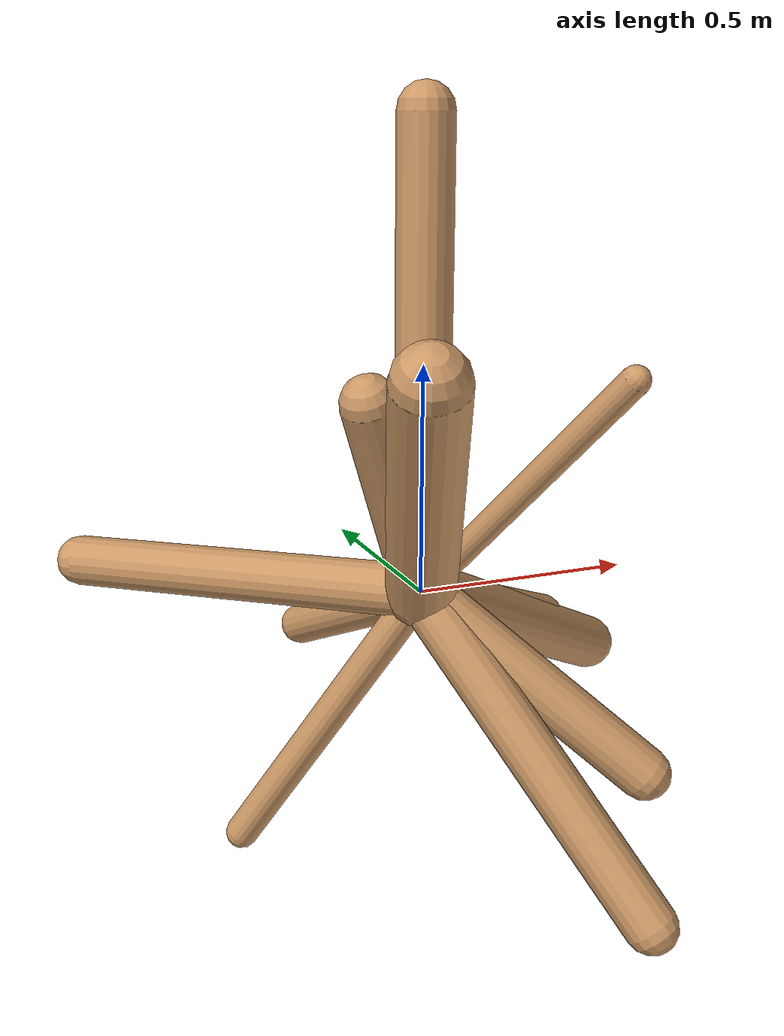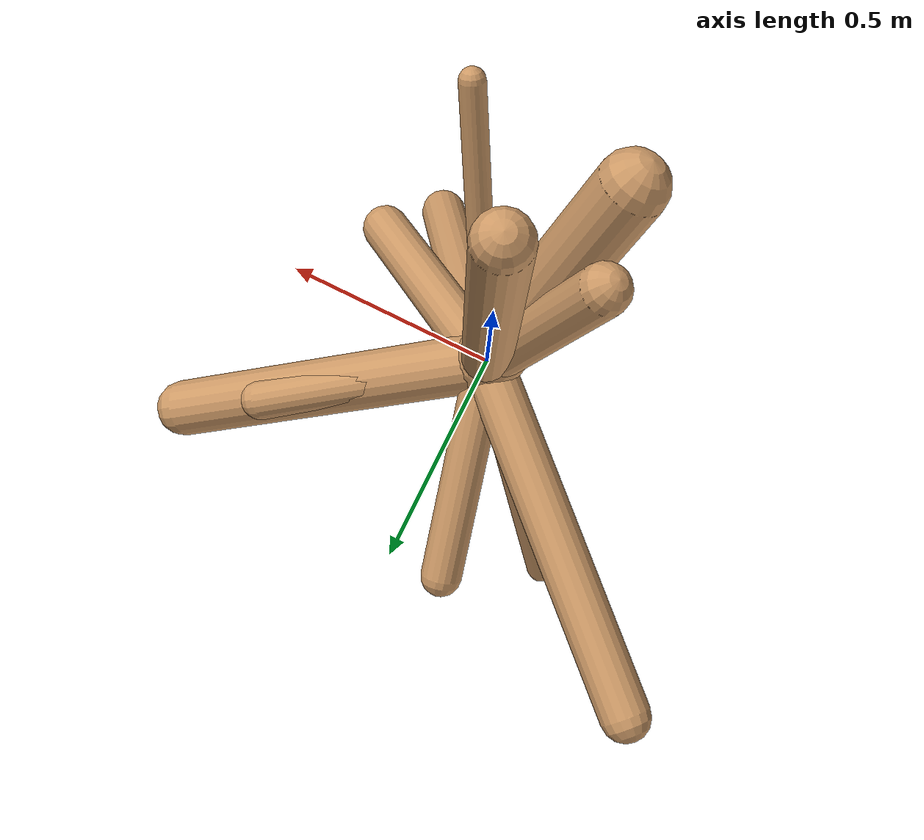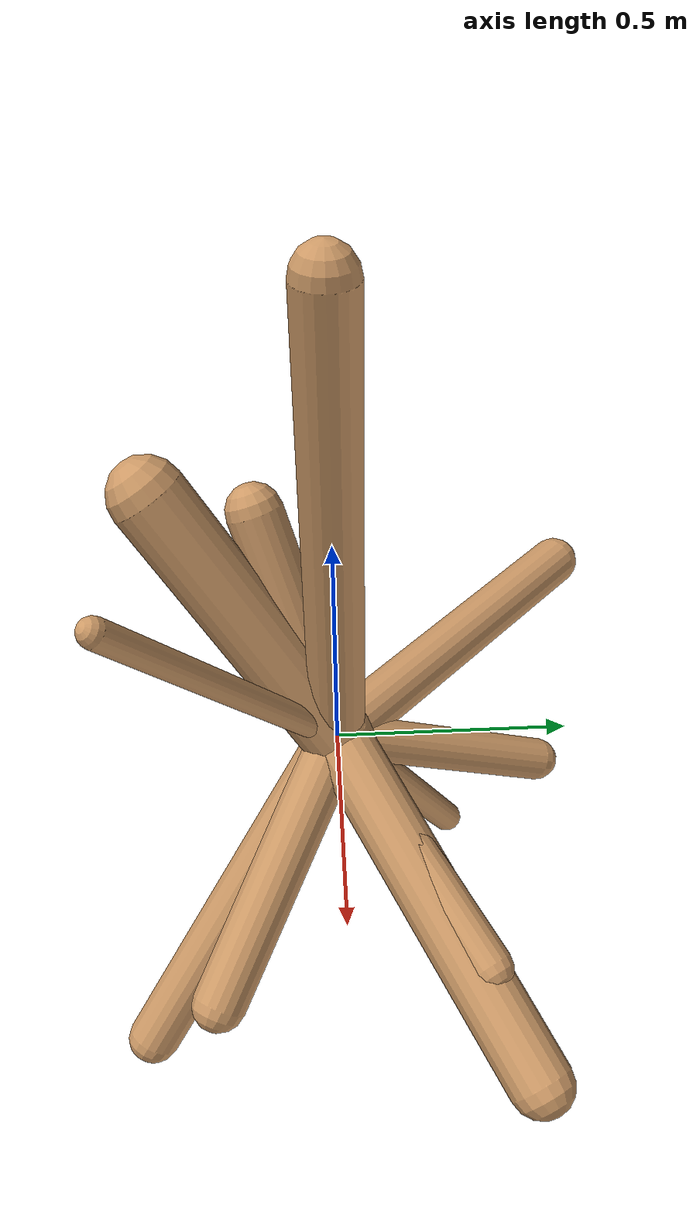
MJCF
<!--
                    joint_number: 10
                    -->
                    <mujoco model="randomrobot">
                        <compiler angle="degree" coordinate="global" inertiafromgeom="true"/>
                        <default>
                        <joint armature="0.01" damping=".1" limited="true"/>
                        <geom conaffinity="0" condim="3" contype="1" density="1000" friction="0.8 .1 .1" rgba="0.8 0.6 .4 1"/>
                        </default>
                        <option integrator="RK4" timestep="0.002"/>
                        <worldbody>
                    <body name='torso' pos='0.00 0.00 1.18'><geom fromto='0 0 0 0.00 0.00 1.00' name='torso_geom' size='0.06' type='capsule'/><inertial mass='0.3'/><body name='L0_D1' pos='0.00 0.00 0.15'><joint axis='0 1 0' name='L0_D1_joint' pos='0 0 0' range='6.02 172.25' type='hinge'/><geom fromto='0 0 0 -0.12 0.48 -0.23' name='L0_D1_geom' size='0.05' type='capsule'/><inertial mass='0.3'/><body name='L1_D0' pos='-0.05 0.18 -0.09'><joint axis='0 0 1' name='L1_D0_joint' pos='0 0 0' range='82.09 172.39' type='hinge'/><geom fromto='0 0 0 0.47 0.29 -0.22' name='L1_D0_geom' size='0.05' type='capsule'/><inertial mass='0.3'/></body><body name='L2_D0' pos='-0.06 0.22 -0.11'><joint axis='0 0 1' name='L2_D0_joint' pos='0 0 0' range='9.90 39.75' type='hinge'/><geom fromto='0 0 0 -0.18 -0.15 0.46' name='L2_D0_geom' size='0.06' type='capsule'/><inertial mass='0.3'/></body></body><body name='L3_D1' pos='0.00 0.00 0.32'><joint axis='0 0 1' name='L3_D1_joint' pos='0 0 0' range='8.56 57.35' type='hinge'/><geom fromto='0 0 0 0.42 -0.28 -0.39' name='L3_D1_geom' size='0.06' type='capsule'/><inertial mass='0.3'/><body name='L4_D0' pos='0.16 -0.11 -0.15'><joint axis='0 0 1' name='L4_D0_joint' pos='0 0 0' range='35.04 164.06' type='hinge'/><geom fromto='0 0 0 -0.64 0.59 -0.03' name='L4_D0_geom' size='0.06' type='capsule'/><inertial mass='0.3'/></body><body name='L5_D0' pos='0.27 -0.18 -0.25'><joint axis='1 0 0' name='L5_D0_joint' pos='0 0 0' range='0.08 90.87' type='hinge'/><geom fromto='0 0 0 0.34 -0.46 -0.65' name='L5_D0_geom' size='0.06' type='capsule'/><inertial mass='0.3'/></body></body><body name='L6_D1' pos='0.00 0.00 0.52'><joint axis='0 0 1' name='L6_D1_joint' pos='0 0 0' range='115.00 148.82' type='hinge'/><geom fromto='0 0 0 -0.34 0.31 -0.69' name='L6_D1_geom' size='0.04' type='capsule'/><inertial mass='0.3'/></body><body name='L7_D1' pos='0.00 0.00 0.37'><joint axis='0 1 0' name='L7_D1_joint' pos='0 0 0' range='76.33 82.51' type='hinge'/><geom fromto='0 0 0 0.25 -0.41 0.52' name='L7_D1_geom' size='0.03' type='capsule'/><inertial mass='0.3'/><body name='L8_D0' pos='0.18 -0.30 0.39'><joint axis='1 0 0' name='L8_D0_joint' pos='0 0 0' range='32.46 105.09' type='hinge'/><geom fromto='0 0 0 -0.14 -0.35 0.53' name='L8_D0_geom' size='0.08' type='capsule'/><inertial mass='0.3'/></body><body name='L9_D0' pos='0.04 -0.07 0.09'><joint axis='0 0 1' name='L9_D0_joint' pos='0 0 0' range='36.68 151.60' type='hinge'/><geom fromto='0 0 0 0.66 0.38 -0.36' name='L9_D0_geom' size='0.07' type='capsule'/><inertial mass='0.3'/></body></body></body>
                        </worldbody>
                    </mujoco>
